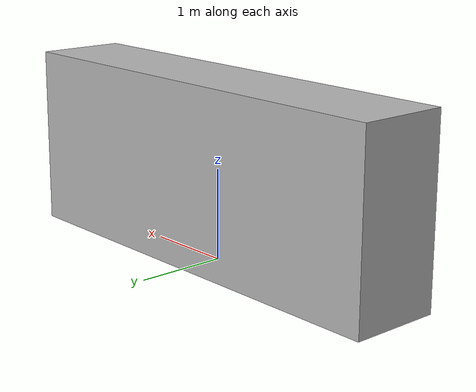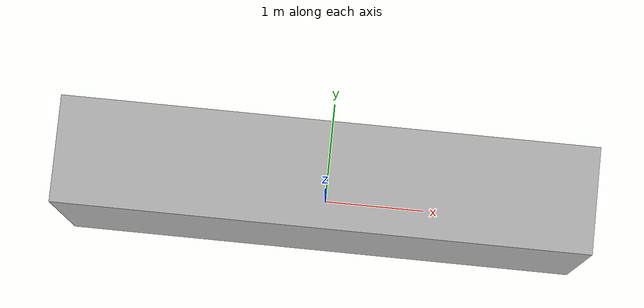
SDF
<?xml version="1.0" ?>
<sdf version="1.3">
    <model name="bush">
        <static>true</static>
        <link name="chassis">
            <pose>0 0 1 0 0 0</pose>
            <collision name="collision">
                <geometry>
                    <box>
                        <size>5 1.0 2</size>
                    </box>
                </geometry>
            </collision>
            <visual name="visual">
                <geometry>
                    <mesh>
                        <uri>model://bush/meshes/bush.dae</uri>
                        <scale>5 1.0 2</scale>
                    </mesh>
                </geometry>
                <material>
                  <script>
                    <uri>model://bush/materials/scripts</uri>
            <uri>model://bush/materials/textures</uri>
                    <name>Bush/Diffuse</name>
                  </script>
                </material>
            </visual>
        </link>
    </model>
</sdf>
